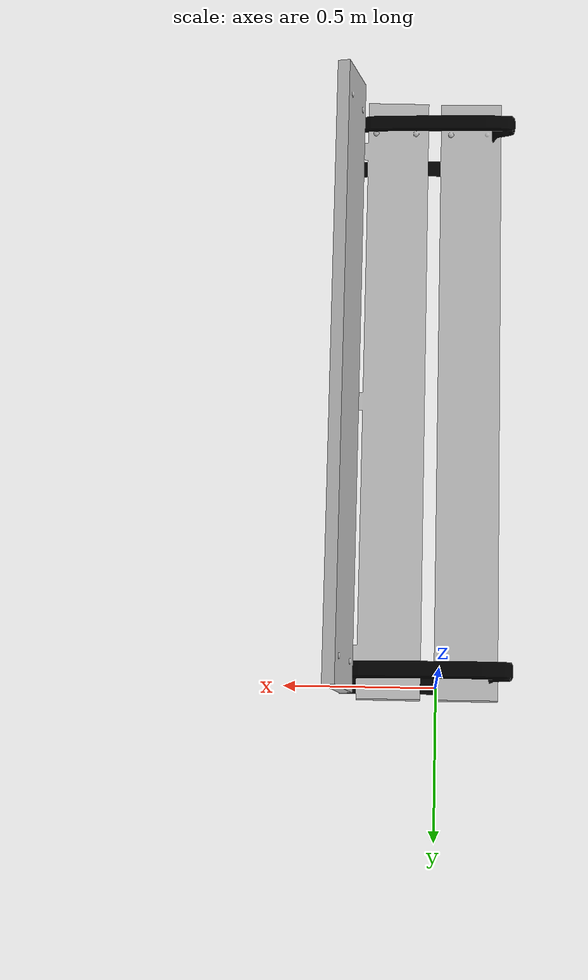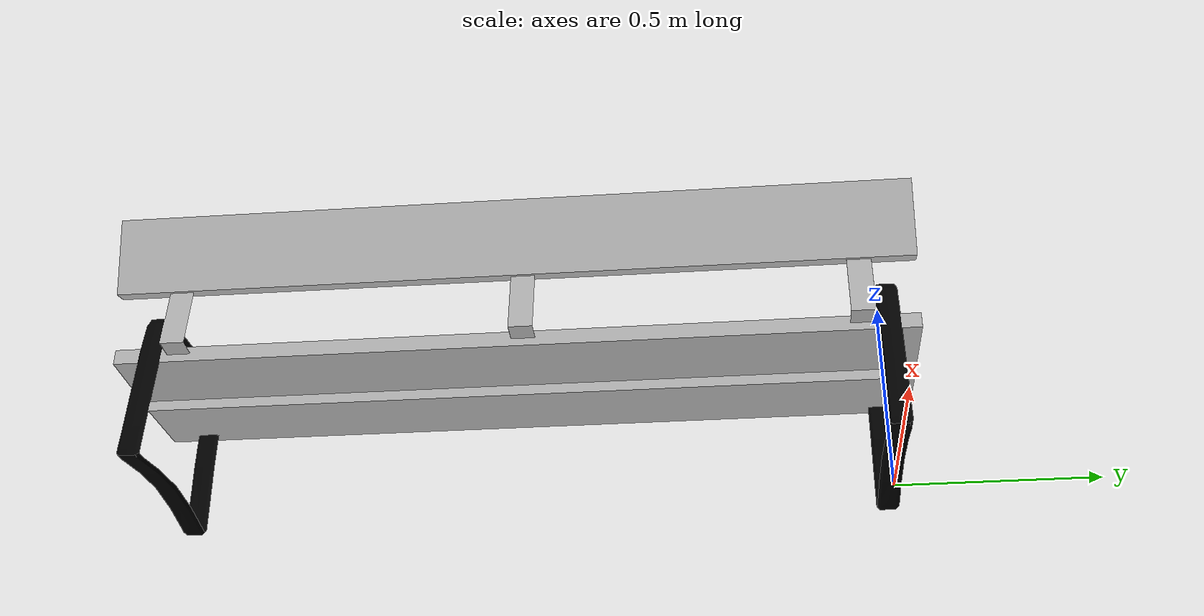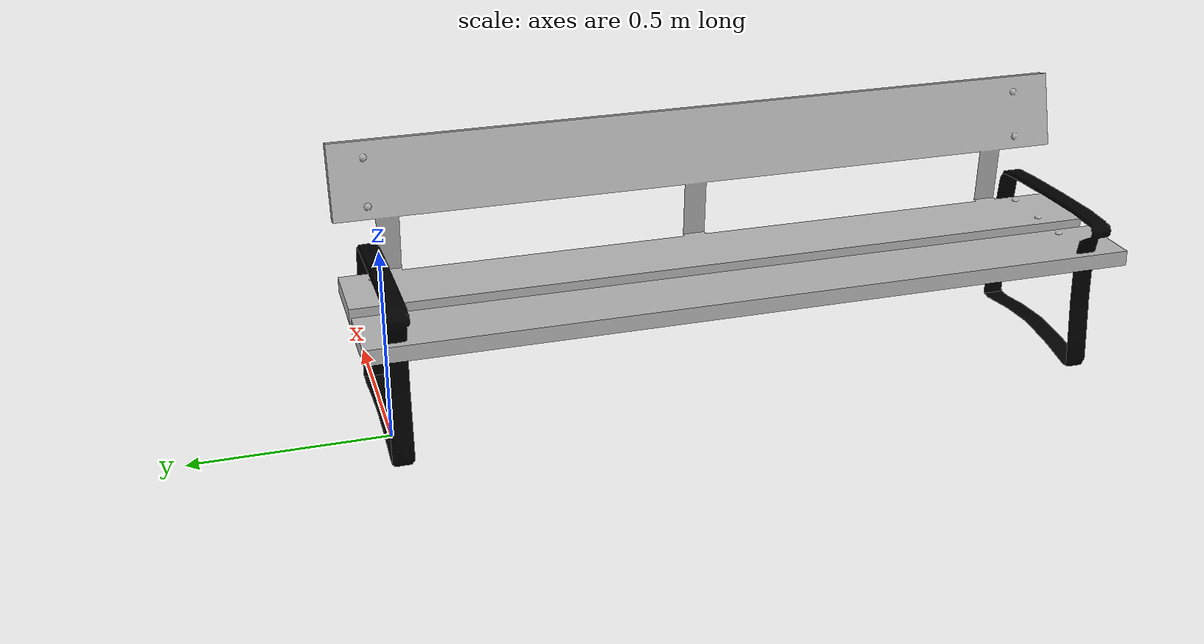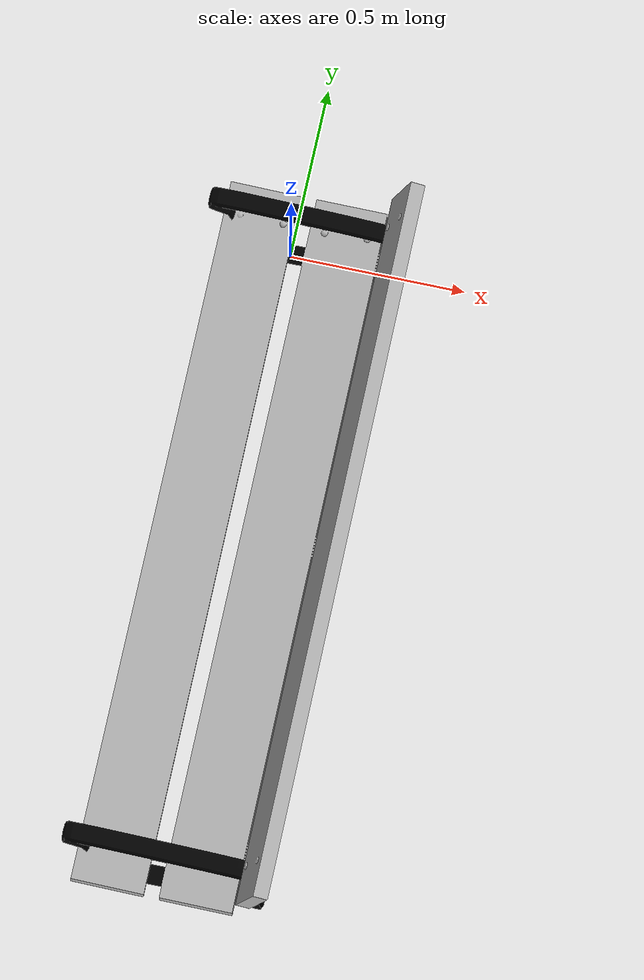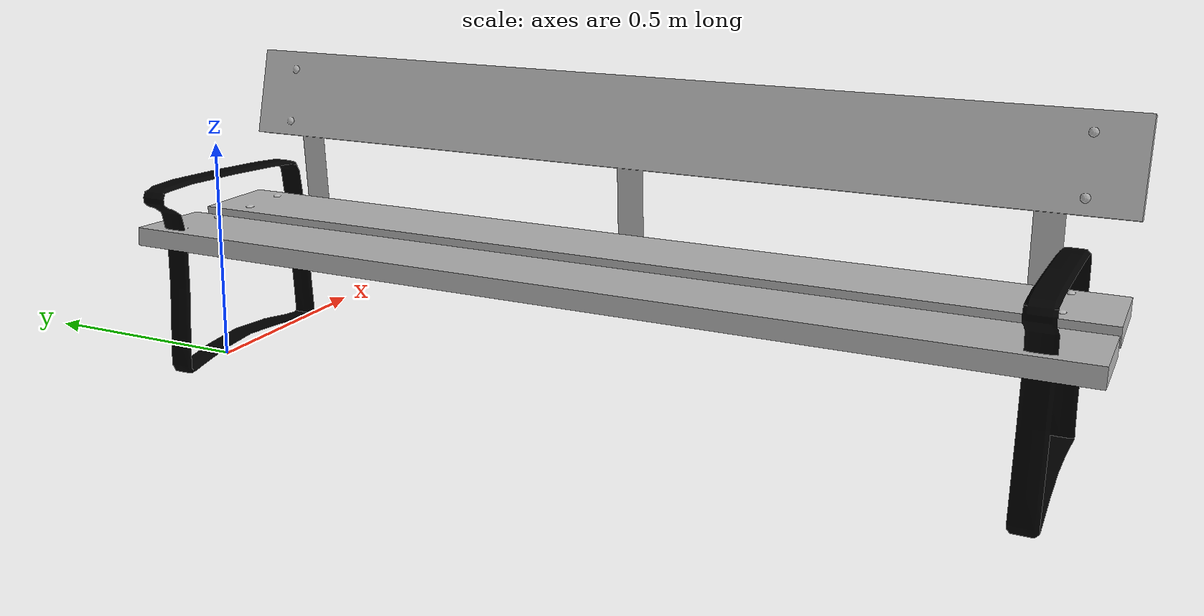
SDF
<?xml version='1.0' ?>
<sdf version='1.6'>
  <model name='banco'>
    <static>false</static>
    <link name='link'>
      <collision name='collision'>
        <geometry>
          <mesh>
            <uri>model://banco/meshes/collision/collision.stl</uri>
          </mesh>
        </geometry>
      </collision>
      <visual name='visual'>
        <geometry>
          <mesh>
            <uri>model://banco/meshes/visual/visual.dae</uri>
          </mesh>
        </geometry>
      </visual>
    </link>
  </model>
</sdf>
